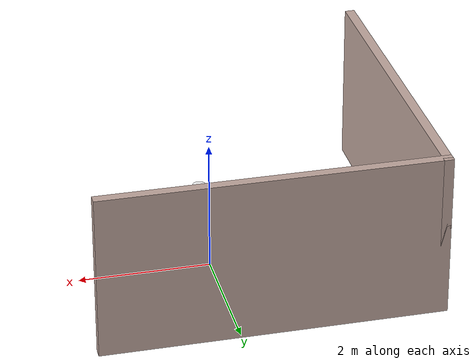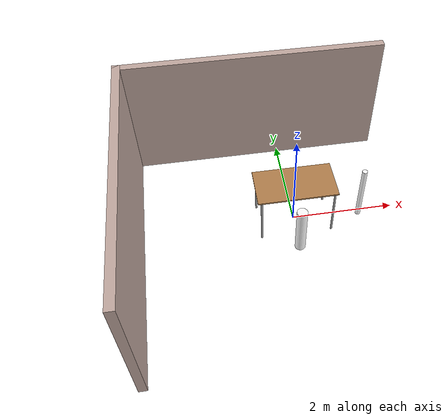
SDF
<sdf version="1.6">
 <world name="default">
  <gravity>0 0 -9.8</gravity>
  <magnetic_field>6e-06 2.3e-05 -4.2e-05</magnetic_field>
  <atmosphere type="adiabatic"/>
  <physics name="default_physics" default="0" type="ode">
   <max_contacts>5</max_contacts>
   <ode>
    <solver>
     <type>quick</type>
     <iters>50</iters>
     <precon_iters>0</precon_iters>
     <sor>1.3</sor>
     <use_dynamic_moi_rescaling>0</use_dynamic_moi_rescaling>
    </solver>
    <constraints>
     <cfm>0</cfm>
     <erp>0.2</erp>
     <contact_max_correcting_vel>100</contact_max_correcting_vel>
     <contact_surface_layer>0.001</contact_surface_layer>
    </constraints>
   </ode>
   <max_step_size>0.001</max_step_size>
   <real_time_factor>1</real_time_factor>
   <real_time_update_rate>1000</real_time_update_rate>
  </physics>
  <scene><ambient>0.4 0.4 0.4 1</ambient><background>0.7 0.7 1 1</background><shadows>1</shadows></scene>
  <spherical_coordinates>
   <surface_model>EARTH_WGS84</surface_model>
   <latitude_deg>0</latitude_deg>
   <longitude_deg>0</longitude_deg>
   <elevation>0</elevation>
   <heading_deg>0</heading_deg>
  </spherical_coordinates>
  <light name="user_spot_light_0" type="spot">
   <pose>-0.614545 -0.753038 2.0714 0.392405 -0 0</pose>
   <diffuse>0.7 0.5 0.2 1</diffuse>
   <specular>0.1 0.1 0.1 1</specular>
   <direction>0 0 -1</direction>
   <attenuation>
    <range>20</range>
    <constant>0.5</constant>
    <linear>0.01</linear>
    <quadratic>0.001</quadratic>
   </attenuation>
   <cast_shadows>0</cast_shadows>
   <spot><inner_angle>0.6</inner_angle><outer_angle>1</outer_angle><falloff>1</falloff></spot>
  </light>
  <light name="user_directional_light_0" type="directional">
   <pose>0 0 3 0 -0 0</pose>
   <diffuse>0.9 0.85 0.8 1</diffuse>
   <specular>0.1 0.1 0.1 1</specular>
   <direction>0.1 0.1 -0.9</direction>
   <attenuation>
    <range>20</range>
    <constant>0.5</constant>
    <linear>0.01</linear>
    <quadratic>0.001</quadratic>
   </attenuation>
  </light>
  <model name="robot_pilar">
   <static>1</static>
   <pose>0 -0.7 0.5 0 -0 0</pose>
   <link name="link">
    <inertial>
     <mass>1</mass>
     <inertia><ixx>0.145833</ixx><ixy>0</ixy><ixz>0</ixz><iyy>0.145833</iyy><iyz>0</iyz><izz>0.125</izz></inertia>
    </inertial>
    <collision name="collision">
     <geometry><cylinder><radius>0.1</radius><length>1</length></cylinder></geometry>
    </collision>
    <visual name="visual">
     <geometry><cylinder><radius>0.1</radius><length>1</length></cylinder></geometry>
     <material>
      <script><uri>file://media/materials/scripts/gazebo.material</uri><name>Gazebo/Metal</name></script>
      <ambient>1 1 1 1</ambient>
     </material>
    </visual>
   </link>
  </model>
  <audio><device>default</device></audio>
  <model name="table">
   <static>1</static>
   <link name="link">
    <collision name="surface">
     <pose>0 0 1 0 -0 0</pose>
     <geometry><box><size>1.5 0.8 0.03</size></box></geometry>
     <surface><friction><ode><mu>0.6</mu><mu2>0.6</mu2></ode></friction></surface>
    </collision>
    <visual name="visual1">
     <pose>0 0 1 0 -0 0</pose>
     <geometry><box><size>1.5 0.8 0.03</size></box></geometry>
     <material>
      <script><uri>file://media/materials/scripts/gazebo.material</uri><name>Gazebo/Wood</name></script>
     </material>
    </visual>
    <collision name="front_left_leg">
     <pose>0.68 0.38 0.5 0 -0 0</pose>
     <geometry><cylinder><radius>0.02</radius><length>1</length></cylinder></geometry>
    </collision>
    <visual name="front_left_leg">
     <pose>0.68 0.38 0.5 0 -0 0</pose>
     <geometry><cylinder><radius>0.02</radius><length>1</length></cylinder></geometry>
     <material>
      <script><uri>file://media/materials/scripts/gazebo.material</uri><name>Gazebo/Grey</name></script>
     </material>
    </visual>
    <collision name="front_right_leg">
     <pose>0.68 -0.38 0.5 0 -0 0</pose>
     <geometry><cylinder><radius>0.02</radius><length>1</length></cylinder></geometry>
    </collision>
    <visual name="front_right_leg">
     <pose>0.68 -0.38 0.5 0 -0 0</pose>
     <geometry><cylinder><radius>0.02</radius><length>1</length></cylinder></geometry>
     <material>
      <script><uri>file://media/materials/scripts/gazebo.material</uri><name>Gazebo/Grey</name></script>
     </material>
    </visual>
    <collision name="back_right_leg">
     <pose>-0.68 -0.38 0.5 0 -0 0</pose>
     <geometry><cylinder><radius>0.02</radius><length>1</length></cylinder></geometry>
    </collision>
    <visual name="back_right_leg">
     <pose>-0.68 -0.38 0.5 0 -0 0</pose>
     <geometry><cylinder><radius>0.02</radius><length>1</length></cylinder></geometry>
     <material>
      <script><uri>file://media/materials/scripts/gazebo.material</uri><name>Gazebo/Grey</name></script>
     </material>
    </visual>
    <collision name="back_left_leg">
     <pose>-0.68 0.38 0.5 0 -0 0</pose>
     <geometry><cylinder><radius>0.02</radius><length>1</length></cylinder></geometry>
    </collision>
    <visual name="back_left_leg">
     <pose>-0.68 0.38 0.5 0 -0 0</pose>
     <geometry><cylinder><radius>0.02</radius><length>1</length></cylinder></geometry>
     <material>
      <script><uri>file://media/materials/scripts/gazebo.material</uri><name>Gazebo/Grey</name></script>
     </material>
    </visual>
   </link>
  </model>
  <model name="camera_pillar">
   <static>1</static>
   <pose>1.33 0 0.5 0 -0 0</pose>
   <link name="link">
    <inertial>
     <mass>1</mass>
     <inertia><ixx>0.145833</ixx><ixy>0</ixy><ixz>0</ixz><iyy>0.145833</iyy><iyz>0</iyz><izz>0.125</izz></inertia>
    </inertial>
    <collision name="collision">
     <geometry><cylinder><radius>0.05</radius><length>1.2</length></cylinder></geometry>
    </collision>
    <visual name="visual">
     <geometry><cylinder><radius>0.05</radius><length>1.2</length></cylinder></geometry>
     <material>
      <script><uri>file://media/materials/scripts/gazebo.material</uri><name>Gazebo/Metal</name></script>
      <ambient>1 1 1 1</ambient>
     </material>
    </visual>
   </link>
  </model>
  <model name="plan">
   <pose>-0.5 -0.5 0 0 -0 0</pose>
   <link name="Wall_10">
    <collision name="Wall_10_Collision">
     <geometry><box><size>5.15 0.15 2.5</size></box></geometry>
     <pose>0 0 1.25 0 -0 0</pose>
    </collision>
    <visual name="Wall_10_Visual">
     <pose>0 0 1.25 0 -0 0</pose>
     <geometry><box><size>5.15 0.15 2.5</size></box></geometry>
     <material>
      <script><uri>file://media/materials/scripts/gazebo.material</uri><name>Gazebo/Grey</name></script>
      <ambient>0.760784 0.662745 0.627451 1</ambient>
     </material>
     <meta><layer>0</layer></meta>
    </visual>
    <pose>0 2.5 0 0 -0 0</pose>
   </link>
   <link name="Wall_9">
    <collision name="Wall_9_Collision">
     <geometry><box><size>5.15 0.15 2.5</size></box></geometry>
     <pose>0 0 1.25 0 -0 0</pose>
    </collision>
    <visual name="Wall_9_Visual">
     <pose>0 0 1.25 0 -0 0</pose>
     <geometry><box><size>5.15 0.15 2.5</size></box></geometry>
     <material>
      <script><uri>file://media/materials/scripts/gazebo.material</uri><name>Gazebo/Grey</name></script>
      <ambient>0.760784 0.662745 0.627451 1</ambient>
     </material>
     <meta><layer>0</layer></meta>
    </visual>
    <pose>-2.5 0 0 0 -0 1.5708</pose>
   </link>
   <static>1</static>
  </model>
 </world>
</sdf>
